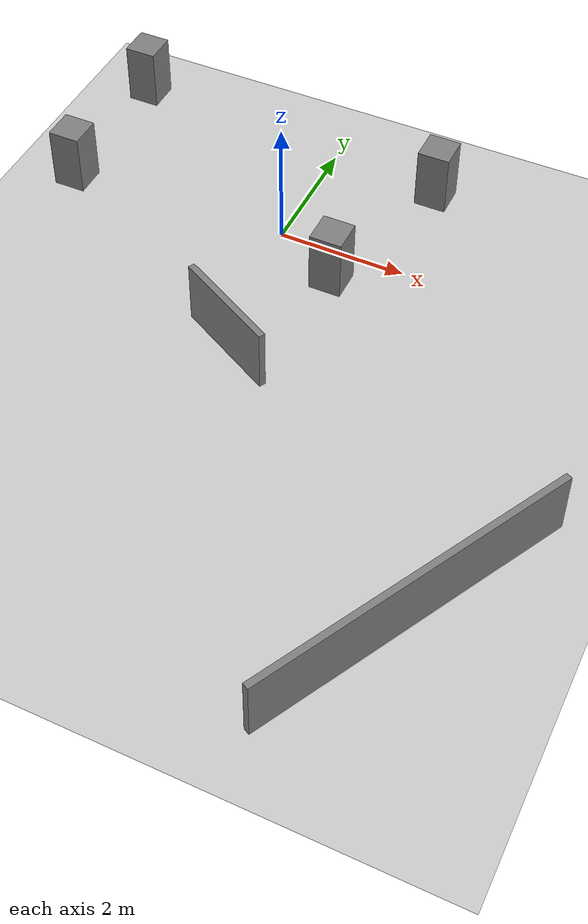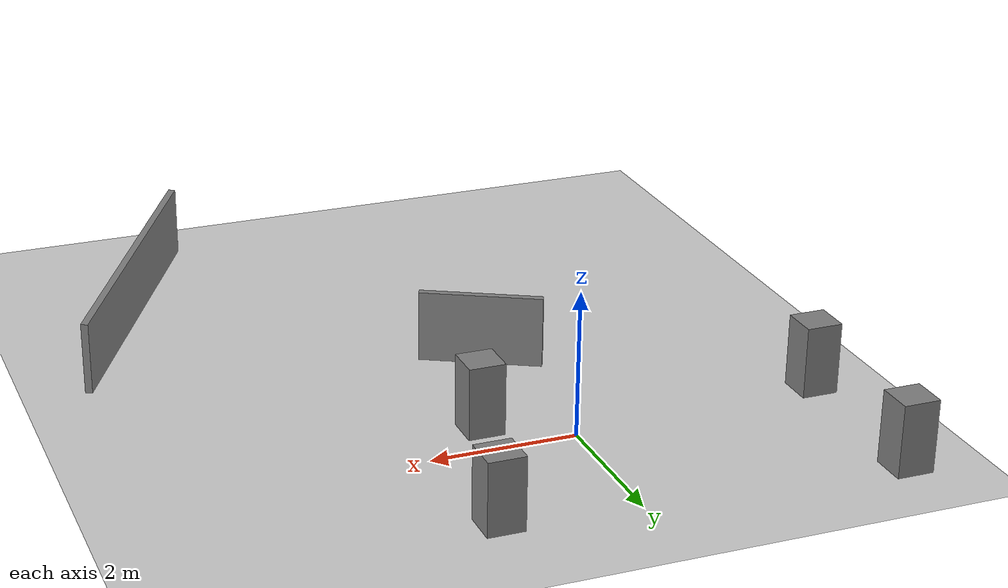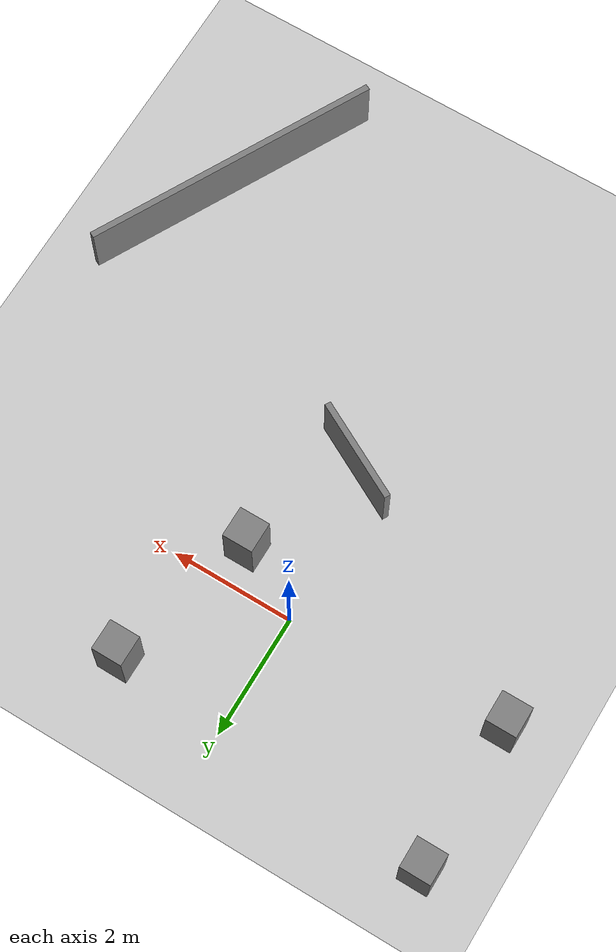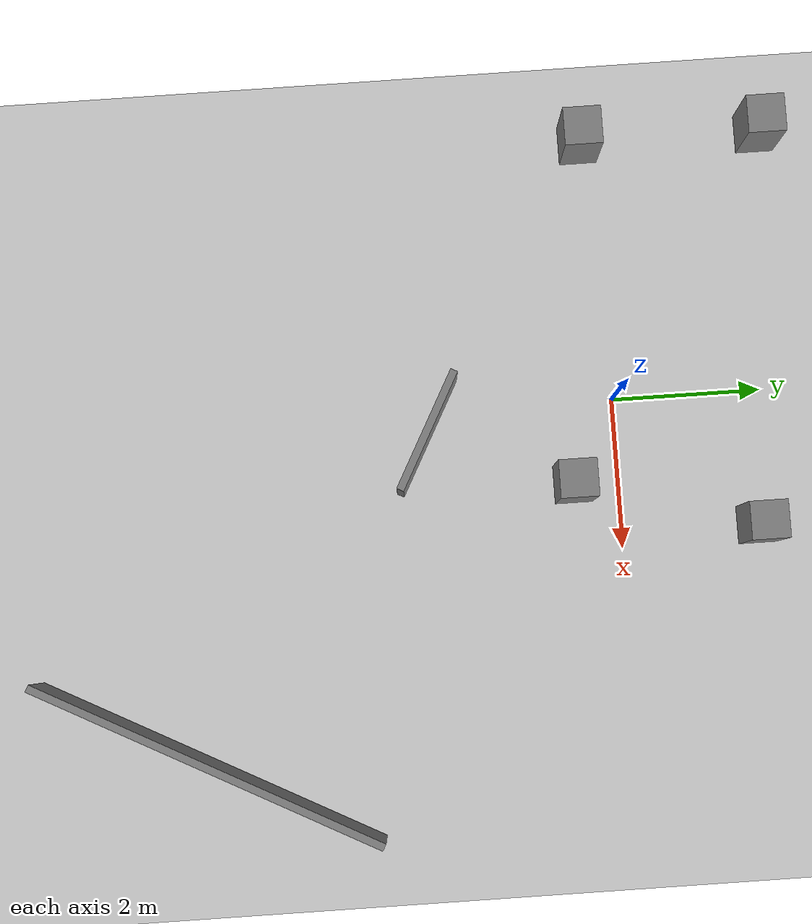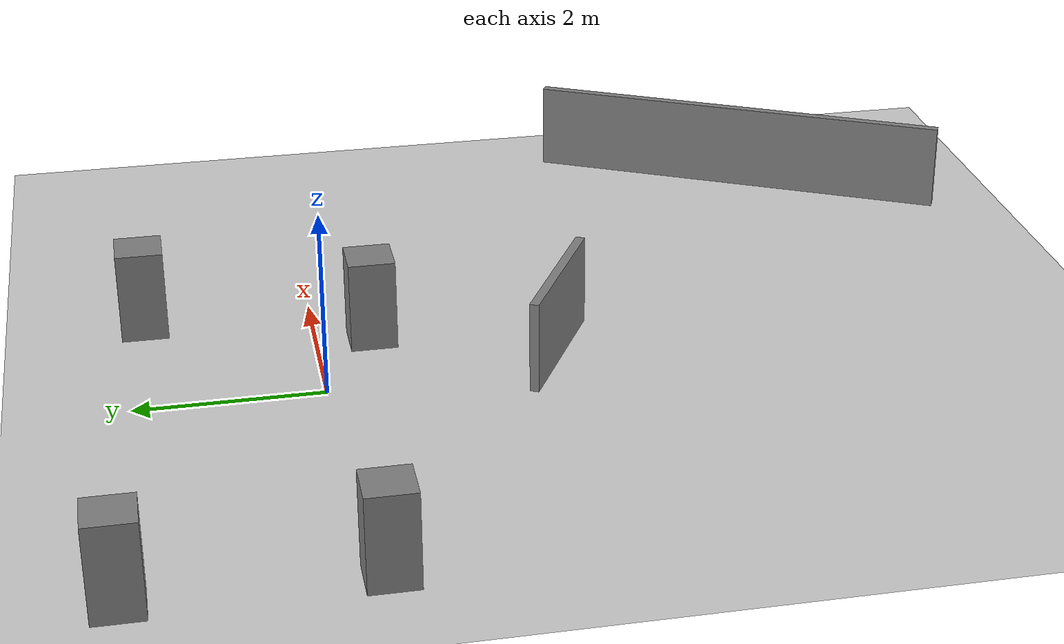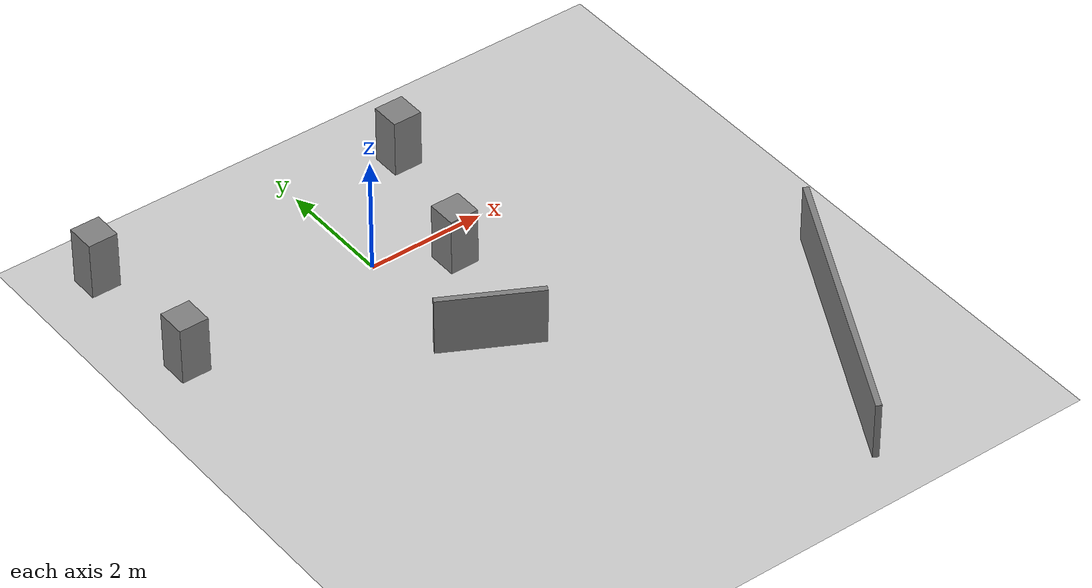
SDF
<?xml version='1.0' encoding='utf-8'?>
<sdf version="1.9">
  <world name="hgjl">
    <physics name="1ms" type="dart">
      <max_step_size>0.001</max_step_size>
      <real_time_factor>1</real_time_factor>
      <real_time_update_rate>1000</real_time_update_rate>
    </physics>
    <plugin name="gz::sim::systems::Physics" filename="gz-sim-physics-system" />
    <plugin name="gz::sim::systems::UserCommands" filename="gz-sim-user-commands-system" />
    <plugin name="gz::sim::systems::SceneBroadcaster" filename="gz-sim-scene-broadcaster-system" />
    <plugin name="gz::sim::systems::Contact" filename="gz-sim-contact-system" />
    <plugin name="gz::sim::systems::Sensors" filename="gz-sim-sensors-system">
      <render_engine>ogre2</render_engine>
    </plugin>
    <gravity>0 0 -9.8</gravity>
    <magnetic_field>6e-06 2.3e-05 -4.2e-05</magnetic_field>
    <atmosphere type="adiabatic" />
    <scene>
      <ambient>0.4 0.4 0.4 1</ambient>
      <background>0.7 0.7 0.7 1</background>
      <shadows>true</shadows>
    </scene>
    <model name="ground_plane">
      <static>true</static>
      <link name="link">
        <collision name="collision">
          <geometry>
            <plane>
              <normal>0 0 1</normal>
              <size>100 100</size>
            </plane>
          </geometry>
          <surface>
            <friction>
              <ode />
            </friction>
            <bounce />
            <contact />
          </surface>
        </collision>
        <visual name="visual">
          <geometry>
            <plane>
              <normal>0 0 1</normal>
              <size>100 100</size>
            </plane>
          </geometry>
          <material>
            <ambient>0.8 0.8 0.8 1</ambient>
            <diffuse>0.8 0.8 0.8 1</diffuse>
            <specular>0.8 0.8 0.8 1</specular>
          </material>
        </visual>
        <pose>0 0 0 0 -0 0</pose>
        <inertial>
          <pose>0 0 0 0 -0 0</pose>
          <mass>1</mass>
          <inertia>
            <ixx>1</ixx>
            <ixy>0</ixy>
            <ixz>0</ixz>
            <iyy>1</iyy>
            <iyz>0</iyz>
            <izz>1</izz>
          </inertia>
        </inertial>
        <enable_wind>false</enable_wind>
      </link>
      <pose>0 0 0 0 -0 0</pose>
      <self_collide>false</self_collide>
    </model>
    <light name="sun" type="directional">
      <pose>0 0 10 0 -0 0</pose>
      <cast_shadows>true</cast_shadows>
      <intensity>1</intensity>
      <direction>-0.5 0.1 -0.9</direction>
      <diffuse>0.8 0.8 0.8 1</diffuse>
      <specular>0.2 0.2 0.2 1</specular>
      <attenuation>
        <range>1000</range>
        <linear>0.01</linear>
        <constant>0.90000000000000002</constant>
        <quadratic>0.001</quadratic>
      </attenuation>
      <spot>
        <inner_angle>0</inner_angle>
        <outer_angle>0</outer_angle>
        <falloff>0</falloff>
      </spot>
    </light>
  <model name="wall_1">
            <static>true</static>
            <type>wall</type>
            <pose>0.350000 -2.500000 0.500000 0 0 -0.489957</pose>
            <link name="link">
                <collision name="collision">
                    <geometry><box><size>1.700000 0.100000 1.000000</size></box></geometry>
                </collision>
                <visual name="visual">
                    <geometry><box><size>1.700000 0.100000 1.000000</size></box></geometry>
                    <material>
                        <diffuse>0.5 0.5 0.5 1</diffuse>
                    </material>
                </visual></link></model><model name="wall_2">
            <static>true</static>
            <type>wall</type>
            <pose>4.450000 -5.600000 0.500000 0 0 -2.052460</pose>
            <link name="link">
                <collision name="collision">
                    <geometry><box><size>4.964877 0.100000 1.000000</size></box></geometry>
                </collision>
                <visual name="visual">
                    <geometry><box><size>4.964877 0.100000 1.000000</size></box></geometry>
                    <material>
                        <diffuse>0.5 0.5 0.5 1</diffuse>
                    </material>
                </visual></link></model><model name="box_1">
            <static>true</static>
            <type>box</type>
            <pose>-3.500000 2.200000 0.500000 0 0 0</pose>
            <link name="link">
                <collision name="collision">
                    <geometry><box><size>0.500000 0.500000 1.000000</size></box></geometry>
                </collision>
                <visual name="visual">
                    <geometry><box><size>0.500000 0.500000 1.000000</size></box></geometry>
                    <material>
                        <diffuse>0.5 0.5 0.5 1</diffuse>
                    </material>
                </visual></link></model><model name="box_3">
            <static>true</static>
            <type>box</type>
            <pose>-3.500000 -0.200000 0.500000 0 0 0</pose>
            <link name="link">
                <collision name="collision">
                    <geometry><box><size>0.500000 0.500000 1.000000</size></box></geometry>
                </collision>
                <visual name="visual">
                    <geometry><box><size>0.500000 0.500000 1.000000</size></box></geometry>
                    <material>
                        <diffuse>0.5 0.5 0.5 1</diffuse>
                    </material>
                </visual></link></model><model name="box_4">
            <static>true</static>
            <type>box</type>
            <pose>1.100000 -0.600000 0.500000 0 0 0</pose>
            <link name="link">
                <collision name="collision">
                    <geometry><box><size>0.500000 0.500000 1.000000</size></box></geometry>
                </collision>
                <visual name="visual">
                    <geometry><box><size>0.500000 0.500000 1.000000</size></box></geometry>
                    <material>
                        <diffuse>0.5 0.5 0.5 1</diffuse>
                    </material>
                </visual></link></model><model name="box_2">
            <static>false</static>
            <type>box</type>
            <pose>1.800000 1.800000 0.500000 0 0 0</pose>
            <link name="link">
                <collision name="collision">
                    <geometry><box><size>0.500000 0.500000 1.000000</size></box></geometry>
                </collision>
                <visual name="visual">
                    <geometry><box><size>0.500000 0.500000 1.000000</size></box></geometry>
                    <material>
                        <diffuse>0.5 0.5 0.5 1</diffuse>
                    </material>
                </visual><inertial>
                <mass>250.000000</mass>
                <inertia>
                    <ixx>26.041667</ixx><ixy>0</ixy><ixz>0</ixz>
                    <iyy>26.041667</iyy><iyz>0</iyz>
                    <izz>10.416667</izz>
                </inertia>
            </inertial><gravity>false</gravity></link><motion><type>linear</type><velocity>1.000000</velocity><std>0.100000</std><point><x>1.600000</x><y>2.400000</y></point><point><x>3.400000</x><y>1.100000</y></point></motion></model></world>
</sdf>
